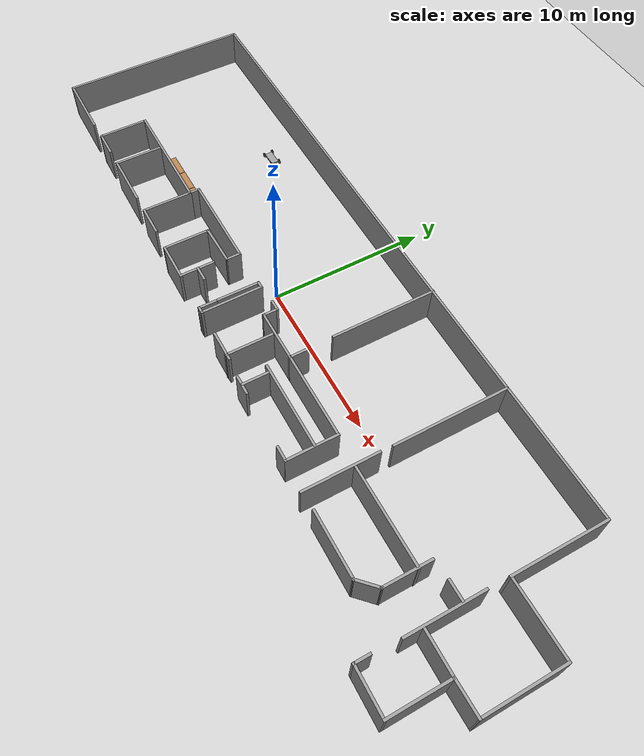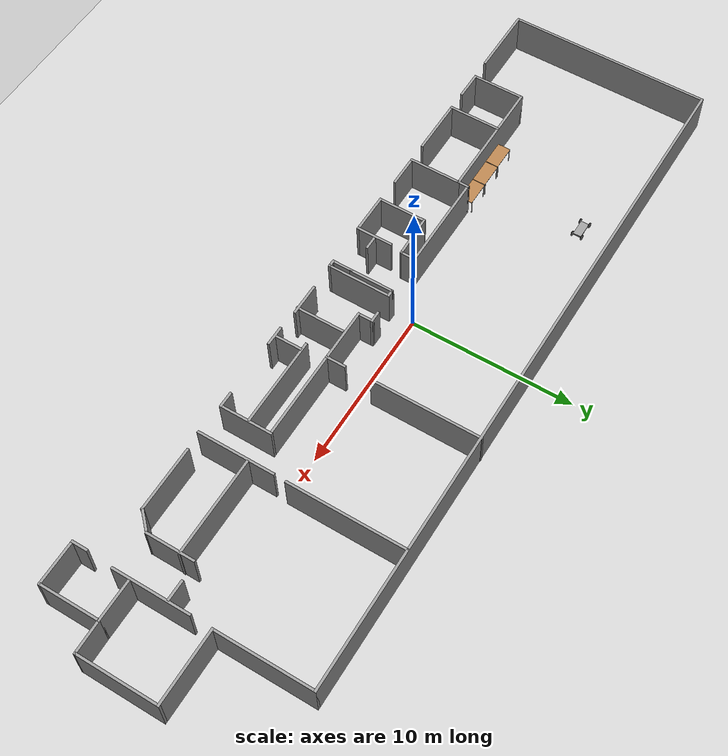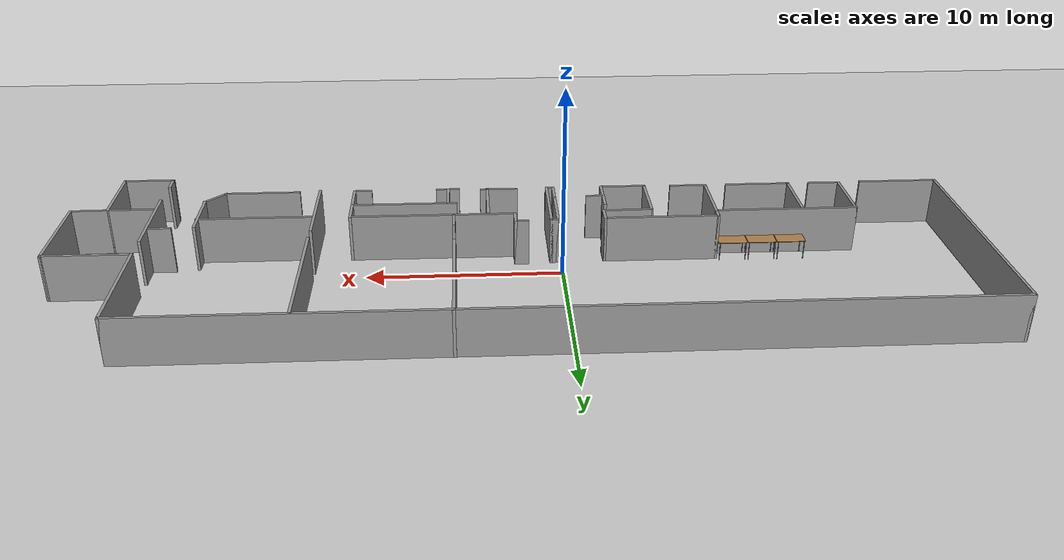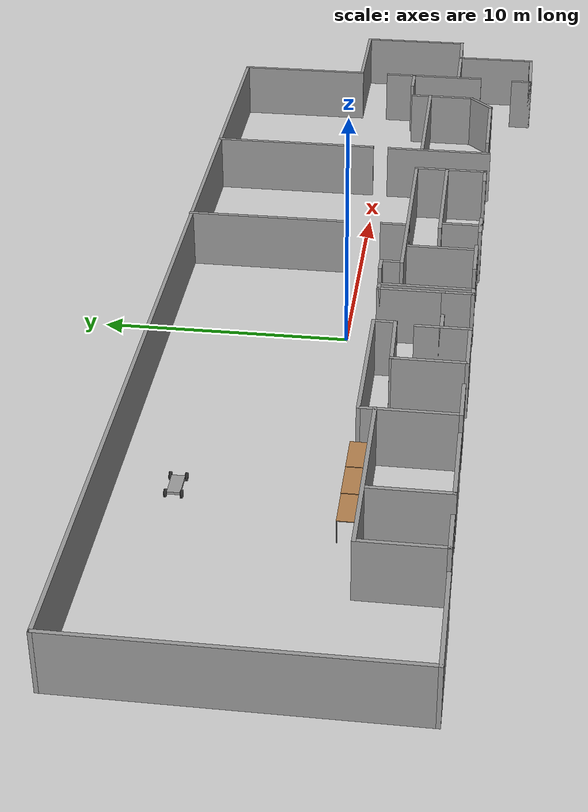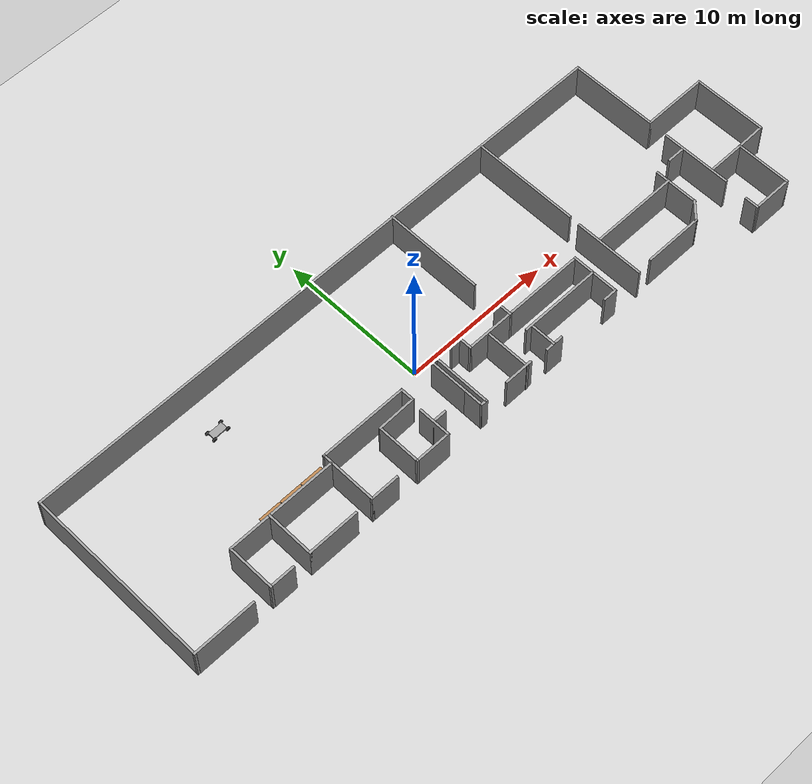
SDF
<sdf version="1.6">
 <world name="default">
  <model name="ground_plane">
   <static>1</static>
   <link name="link">
    <collision name="collision">
     <geometry><plane><normal>0 0 1</normal><size>100 100</size></plane></geometry>
     <surface>
      <contact><collide_bitmask>65535</collide_bitmask></contact>
      <friction><ode><mu>100</mu><mu2>50</mu2></ode></friction>
     </surface>
    </collision>
    <visual name="visual">
     <cast_shadows>0</cast_shadows>
     <geometry><plane><normal>0 0 1</normal><size>100 100</size></plane></geometry>
     <material>
      <script><uri>file://media/materials/scripts/gazebo.material</uri><name>Gazebo/Grey</name></script>
     </material>
    </visual>
   </link>
  </model>
  <model name="574_3rd_floor_Labs">
   <pose>2.28282 0.192982 0 0 -0 0</pose>
   <link name="Wall_0">
    <collision name="Wall_0_Collision">
     <geometry><box><size>4.25 0.15 2.5</size></box></geometry>
     <pose>0 0 1.25 0 -0 0</pose>
    </collision>
    <visual name="Wall_0_Visual">
     <pose>0 0 1.25 0 -0 0</pose>
     <geometry><box><size>4.25 0.15 2.5</size></box></geometry>
     <material>
      <script><uri>file://media/materials/scripts/gazebo.material</uri><name>Gazebo/Grey</name></script>
      <ambient>1 1 1 1</ambient>
     </material>
     <meta><layer>0</layer></meta>
    </visual>
    <pose>-21.0506 -5.20048 0 0 -0 3.14159</pose>
   </link>
   <link name="Wall_1">
    <collision name="Wall_1_Collision">
     <geometry><box><size>12.5 0.15 2.5</size></box></geometry>
     <pose>0 0 1.25 0 -0 0</pose>
    </collision>
    <visual name="Wall_1_Visual">
     <pose>0 0 1.25 0 -0 0</pose>
     <geometry><box><size>12.5 0.15 2.5</size></box></geometry>
     <material>
      <script><uri>file://media/materials/scripts/gazebo.material</uri><name>Gazebo/Grey</name></script>
      <ambient>1 1 1 1</ambient>
     </material>
     <meta><layer>0</layer></meta>
    </visual>
    <pose>-23.1006 0.974519 0 0 -0 1.5708</pose>
   </link>
   <link name="Wall_10">
    <collision name="Wall_10_Collision">
     <geometry><box><size>1 0.15 2.5</size></box></geometry>
     <pose>0 0 1.25 0 -0 0</pose>
    </collision>
    <visual name="Wall_10_Visual">
     <pose>0 0 1.25 0 -0 0</pose>
     <geometry><box><size>1 0.15 2.5</size></box></geometry>
     <material>
      <script><uri>file://media/materials/scripts/gazebo.material</uri><name>Gazebo/Grey</name></script>
      <ambient>1 1 1 1</ambient>
     </material>
     <meta><layer>0</layer></meta>
    </visual>
    <pose>-4.55115 -1.8903 0 0 0 -1.5708</pose>
   </link>
   <link name="Wall_12">
    <collision name="Wall_12_Collision">
     <geometry><box><size>3.25 0.15 2.5</size></box></geometry>
     <pose>0 0 1.25 0 -0 0</pose>
    </collision>
    <visual name="Wall_12_Visual">
     <pose>0 0 1.25 0 -0 0</pose>
     <geometry><box><size>3.25 0.15 2.5</size></box></geometry>
     <material>
      <script><uri>file://media/materials/scripts/gazebo.material</uri><name>Gazebo/Grey</name></script>
      <ambient>1 1 1 1</ambient>
     </material>
     <meta><layer>0</layer></meta>
    </visual>
    <pose>-14.9551 -3.61957 0 0 0 -1.5708</pose>
   </link>
   <link name="Wall_13">
    <collision name="Wall_13_Collision">
     <geometry><box><size>3.5 0.15 2.5</size></box></geometry>
     <pose>0 0 1.25 0 -0 0</pose>
    </collision>
    <visual name="Wall_13_Visual">
     <pose>0 0 1.25 0 -0 0</pose>
     <geometry><box><size>3.5 0.15 2.5</size></box></geometry>
     <material>
      <script><uri>file://media/materials/scripts/gazebo.material</uri><name>Gazebo/Grey</name></script>
      <ambient>1 1 1 1</ambient>
     </material>
     <meta><layer>0</layer></meta>
    </visual>
    <pose>-13.2801 -5.16957 0 0 -0 0</pose>
   </link>
   <link name="Wall_15">
    <collision name="Wall_15_Collision">
     <geometry><box><size>3.25 0.15 2.5</size></box></geometry>
     <pose>0 0 1.25 0 -0 0</pose>
    </collision>
    <visual name="Wall_15_Visual">
     <pose>0 0 1.25 0 -0 0</pose>
     <geometry><box><size>3.25 0.15 2.5</size></box></geometry>
     <material>
      <script><uri>file://media/materials/scripts/gazebo.material</uri><name>Gazebo/Grey</name></script>
      <ambient>1 1 1 1</ambient>
     </material>
     <meta><layer>0</layer></meta>
    </visual>
    <pose>-10.4011 -3.6153 0 0 0 -1.5708</pose>
   </link>
   <link name="Wall_16">
    <collision name="Wall_16_Collision">
     <geometry><box><size>2 0.15 2.5</size></box></geometry>
     <pose>0 0 1.25 0 -0 0</pose>
    </collision>
    <visual name="Wall_16_Visual">
     <pose>0 0 1.25 0 -0 0</pose>
     <geometry><box><size>2 0.15 2.5</size></box></geometry>
     <material>
      <script><uri>file://media/materials/scripts/gazebo.material</uri><name>Gazebo/Grey</name></script>
      <ambient>1 1 1 1</ambient>
     </material>
     <meta><layer>0</layer></meta>
    </visual>
    <pose>-9.47615 -5.1653 0 0 -0 0</pose>
   </link>
   <link name="Wall_18">
    <collision name="Wall_18_Collision">
     <geometry><box><size>2.25 0.15 2.5</size></box></geometry>
     <pose>0 0 1.25 0 -0 0</pose>
    </collision>
    <visual name="Wall_18_Visual">
     <pose>0 0 1.25 0 -0 0</pose>
     <geometry><box><size>2.25 0.15 2.5</size></box></geometry>
     <material>
      <script><uri>file://media/materials/scripts/gazebo.material</uri><name>Gazebo/Grey</name></script>
      <ambient>1 1 1 1</ambient>
     </material>
     <meta><layer>0</layer></meta>
    </visual>
    <pose>-4.71805 -4.17493 0 0 0 -1.5708</pose>
   </link>
   <link name="Wall_19">
    <collision name="Wall_19_Collision">
     <geometry><box><size>2.5 0.15 2.5</size></box></geometry>
     <pose>0 0 1.25 0 -0 0</pose>
    </collision>
    <visual name="Wall_19_Visual">
     <pose>0 0 1.25 0 -0 0</pose>
     <geometry><box><size>2.5 0.15 2.5</size></box></geometry>
     <material>
      <script><uri>file://media/materials/scripts/gazebo.material</uri><name>Gazebo/Grey</name></script>
      <ambient>1 1 1 1</ambient>
     </material>
     <meta><layer>0</layer></meta>
    </visual>
    <pose>-5.89305 -5.22493 0 0 -0 3.14159</pose>
   </link>
   <link name="Wall_2">
    <collision name="Wall_2_Collision">
     <geometry><box><size>42 0.15 2.5</size></box></geometry>
     <pose>0 0 1.25 0 -0 0</pose>
    </collision>
    <visual name="Wall_2_Visual">
     <pose>0 0 1.25 0 -0 0</pose>
     <geometry><box><size>42 0.15 2.5</size></box></geometry>
     <material>
      <script><uri>file://media/materials/scripts/gazebo.material</uri><name>Gazebo/Grey</name></script>
      <ambient>1 1 1 1</ambient>
     </material>
     <meta><layer>0</layer></meta>
    </visual>
    <pose>-2.17563 7.14952 0 0 -0 0</pose>
   </link>
   <link name="Wall_20">
    <collision name="Wall_20_Collision">
     <geometry><box><size>3 0.15 2.5</size></box></geometry>
     <pose>0 0 1.25 0 -0 0</pose>
    </collision>
    <visual name="Wall_20_Visual">
     <pose>0 0 1.25 0 -0 0</pose>
     <geometry><box><size>3 0.15 2.5</size></box></geometry>
     <material>
      <script><uri>file://media/materials/scripts/gazebo.material</uri><name>Gazebo/Grey</name></script>
      <ambient>1 1 1 1</ambient>
     </material>
     <meta><layer>0</layer></meta>
    </visual>
    <pose>-7.06805 -3.79993 0 0 -0 1.5708</pose>
   </link>
   <link name="Wall_21">
    <collision name="Wall_21_Collision">
     <geometry><box><size>2.66761 0.15 2.5</size></box></geometry>
     <pose>0 0 1.25 0 -0 0</pose>
    </collision>
    <visual name="Wall_21_Visual">
     <pose>0 0 1.25 0 -0 0</pose>
     <geometry><box><size>2.66761 0.15 2.5</size></box></geometry>
     <material>
      <script><uri>file://media/materials/scripts/gazebo.material</uri><name>Gazebo/Grey</name></script>
      <ambient>1 1 1 1</ambient>
     </material>
     <meta><layer>0</layer></meta>
    </visual>
    <pose>-5.8096 -2.34512 0 0 -0 0.023688</pose>
   </link>
   <link name="Wall_24">
    <collision name="Wall_24_Collision">
     <geometry><box><size>6.75 0.15 2.5</size></box></geometry>
     <pose>0 0 1.25 0 -0 0</pose>
    </collision>
    <visual name="Wall_24_Visual">
     <pose>0 0 1.25 0 -0 0</pose>
     <geometry><box><size>6.75 0.15 2.5</size></box></geometry>
     <material>
      <script><uri>file://media/materials/scripts/gazebo.material</uri><name>Gazebo/Grey</name></script>
      <ambient>1 1 1 1</ambient>
     </material>
     <meta><layer>0</layer></meta>
    </visual>
    <pose>3.19717 3.88244 0 0 0 -1.5708</pose>
   </link>
   <link name="Wall_26">
    <collision name="Wall_26_Collision">
     <geometry><box><size>7.25 0.15 2.5</size></box></geometry>
     <pose>0 0 1.25 0 -0 0</pose>
    </collision>
    <visual name="Wall_26_Visual">
     <pose>0 0 1.25 0 -0 0</pose>
     <geometry><box><size>7.25 0.15 2.5</size></box></geometry>
     <material>
      <script><uri>file://media/materials/scripts/gazebo.material</uri><name>Gazebo/Grey</name></script>
      <ambient>1 1 1 1</ambient>
     </material>
     <meta><layer>0</layer></meta>
    </visual>
    <pose>10.444 3.56209 0 0 0 -1.5708</pose>
   </link>
   <link name="Wall_28">
    <collision name="Wall_28_Collision">
     <geometry><box><size>1 0.15 2.5</size></box></geometry>
     <pose>0 0 1.25 0 -0 0</pose>
    </collision>
    <visual name="Wall_28_Visual">
     <pose>0 0 1.25 0 -0 0</pose>
     <geometry><box><size>1 0.15 2.5</size></box></geometry>
     <material>
      <script><uri>file://media/materials/scripts/gazebo.material</uri><name>Gazebo/Grey</name></script>
      <ambient>1 1 1 1</ambient>
     </material>
     <meta><layer>0</layer></meta>
    </visual>
    <pose>-4.29305 -4.10994 0 0 -0 0</pose>
   </link>
   <link name="Wall_3">
    <collision name="Wall_3_Collision">
     <geometry><box><size>6 0.15 2.5</size></box></geometry>
     <pose>0 0 1.25 0 -0 0</pose>
    </collision>
    <visual name="Wall_3_Visual">
     <pose>0 0 1.25 0 -0 0</pose>
     <geometry><box><size>6 0.15 2.5</size></box></geometry>
     <material>
      <script><uri>file://media/materials/scripts/gazebo.material</uri><name>Gazebo/Grey</name></script>
      <ambient>1 1 1 1</ambient>
     </material>
     <meta><layer>0</layer></meta>
    </visual>
    <pose>18.7494 4.22452 0 0 0 -1.5708</pose>
   </link>
   <link name="Wall_30">
    <collision name="Wall_30_Collision">
     <geometry><box><size>2.75 0.15 2.5</size></box></geometry>
     <pose>0 0 1.25 0 -0 0</pose>
    </collision>
    <visual name="Wall_30_Visual">
     <pose>0 0 1.25 0 -0 0</pose>
     <geometry><box><size>2.75 0.15 2.5</size></box></geometry>
     <material>
      <script><uri>file://media/materials/scripts/gazebo.material</uri><name>Gazebo/Grey</name></script>
      <ambient>1 1 1 1</ambient>
     </material>
     <meta><layer>0</layer></meta>
    </visual>
    <pose>-2.11482 -2.73958 0 0 -0 1.5708</pose>
   </link>
   <link name="Wall_31">
    <collision name="Wall_31_Collision">
     <geometry><box><size>0.5 0.15 2.5</size></box></geometry>
     <pose>0 0 1.25 0 -0 0</pose>
    </collision>
    <visual name="Wall_31_Visual">
     <pose>0 0 1.25 0 -0 0</pose>
     <geometry><box><size>0.5 0.15 2.5</size></box></geometry>
     <material>
      <script><uri>file://media/materials/scripts/gazebo.material</uri><name>Gazebo/Grey</name></script>
      <ambient>1 1 1 1</ambient>
     </material>
     <meta><layer>0</layer></meta>
    </visual>
    <pose>-1.93982 -1.43958 0 0 -0 0</pose>
   </link>
   <link name="Wall_32">
    <collision name="Wall_32_Collision">
     <geometry><box><size>3.92964 0.15 2.5</size></box></geometry>
     <pose>0 0 1.25 0 -0 0</pose>
    </collision>
    <visual name="Wall_32_Visual">
     <pose>0 0 1.25 0 -0 0</pose>
     <geometry><box><size>3.92964 0.15 2.5</size></box></geometry>
     <material>
      <script><uri>file://media/materials/scripts/gazebo.material</uri><name>Gazebo/Grey</name></script>
      <ambient>1 1 1 1</ambient>
     </material>
     <meta><layer>0</layer></meta>
    </visual>
    <pose>-1.76482 -3.3294 0 0 0 -1.5708</pose>
   </link>
   <link name="Wall_35">
    <collision name="Wall_35_Collision">
     <geometry><box><size>0.5 0.15 2.5</size></box></geometry>
     <pose>0 0 1.25 0 -0 0</pose>
    </collision>
    <visual name="Wall_35_Visual">
     <pose>0 0 1.25 0 -0 0</pose>
     <geometry><box><size>0.5 0.15 2.5</size></box></geometry>
     <material>
      <script><uri>file://media/materials/scripts/gazebo.material</uri><name>Gazebo/Grey</name></script>
      <ambient>1 1 1 1</ambient>
     </material>
     <meta><layer>0</layer></meta>
    </visual>
    <pose>-1.93982 -5.21922 0 0 -0 3.14159</pose>
   </link>
   <link name="Wall_36">
    <collision name="Wall_36_Collision">
     <geometry><box><size>1.32964 0.15 2.5</size></box></geometry>
     <pose>0 0 1.25 0 -0 0</pose>
    </collision>
    <visual name="Wall_36_Visual">
     <pose>0 0 1.25 0 -0 0</pose>
     <geometry><box><size>1.32964 0.15 2.5</size></box></geometry>
     <material>
      <script><uri>file://media/materials/scripts/gazebo.material</uri><name>Gazebo/Grey</name></script>
      <ambient>1 1 1 1</ambient>
     </material>
     <meta><layer>0</layer></meta>
    </visual>
    <pose>-2.11482 -4.6294 0 0 -0 1.5708</pose>
   </link>
   <link name="Wall_38">
    <collision name="Wall_38_Collision">
     <geometry><box><size>4.75 0.15 2.5</size></box></geometry>
     <pose>0 0 1.25 0 -0 0</pose>
    </collision>
    <visual name="Wall_38_Visual">
     <pose>0 0 1.25 0 -0 0</pose>
     <geometry><box><size>4.75 0.15 2.5</size></box></geometry>
     <material>
      <script><uri>file://media/materials/scripts/gazebo.material</uri><name>Gazebo/Grey</name></script>
      <ambient>1 1 1 1</ambient>
     </material>
     <meta><layer>0</layer></meta>
    </visual>
    <pose>10.4088 -3.10313 0 0 0 -1.5708</pose>
   </link>
   <link name="Wall_40">
    <collision name="Wall_40_Collision">
     <geometry><box><size>2 0.15 2.5</size></box></geometry>
     <pose>0 0 1.25 0 -0 0</pose>
    </collision>
    <visual name="Wall_40_Visual">
     <pose>0 0 1.25 0 -0 0</pose>
     <geometry><box><size>2 0.15 2.5</size></box></geometry>
     <material>
      <script><uri>file://media/materials/scripts/gazebo.material</uri><name>Gazebo/Grey</name></script>
      <ambient>1 1 1 1</ambient>
     </material>
     <meta><layer>0</layer></meta>
    </visual>
    <pose>0.819218 -5.19149 0 0 -0 0</pose>
   </link>
   <link name="Wall_42">
    <collision name="Wall_42_Collision">
     <geometry><box><size>3 0.15 2.5</size></box></geometry>
     <pose>0 0 1.25 0 -0 0</pose>
    </collision>
    <visual name="Wall_42_Visual">
     <pose>0 0 1.25 0 -0 0</pose>
     <geometry><box><size>3 0.15 2.5</size></box></geometry>
     <material>
      <script><uri>file://media/materials/scripts/gazebo.material</uri><name>Gazebo/Grey</name></script>
      <ambient>1 1 1 1</ambient>
     </material>
     <meta><layer>0</layer></meta>
    </visual>
    <pose>1.44208 -3.80167 0 0 -0 1.5708</pose>
   </link>
   <link name="Wall_44">
    <collision name="Wall_44_Collision">
     <geometry><box><size>8.5 0.15 2.5</size></box></geometry>
     <pose>0 0 1.25 0 -0 0</pose>
    </collision>
    <visual name="Wall_44_Visual">
     <pose>0 0 1.25 0 -0 0</pose>
     <geometry><box><size>8.5 0.15 2.5</size></box></geometry>
     <material>
      <script><uri>file://media/materials/scripts/gazebo.material</uri><name>Gazebo/Grey</name></script>
      <ambient>1 1 1 1</ambient>
     </material>
     <meta><layer>0</layer></meta>
    </visual>
    <pose>4.24511 -2.2013 0 0 -0 0</pose>
   </link>
   <link name="Wall_46">
    <collision name="Wall_46_Collision">
     <geometry><box><size>1 0.15 2.5</size></box></geometry>
     <pose>0 0 1.25 0 -0 0</pose>
    </collision>
    <visual name="Wall_46_Visual">
     <pose>0 0 1.25 0 -0 0</pose>
     <geometry><box><size>1 0.15 2.5</size></box></geometry>
     <material>
      <script><uri>file://media/materials/scripts/gazebo.material</uri><name>Gazebo/Grey</name></script>
      <ambient>1 1 1 1</ambient>
     </material>
     <meta><layer>0</layer></meta>
    </visual>
    <pose>8.1289 -5.29703 0 0 -0 0</pose>
   </link>
   <link name="Wall_47">
    <collision name="Wall_47_Collision">
     <geometry><box><size>3.25 0.15 2.5</size></box></geometry>
     <pose>0 0 1.25 0 -0 0</pose>
    </collision>
    <visual name="Wall_47_Visual">
     <pose>0 0 1.25 0 -0 0</pose>
     <geometry><box><size>3.25 0.15 2.5</size></box></geometry>
     <material>
      <script><uri>file://media/materials/scripts/gazebo.material</uri><name>Gazebo/Grey</name></script>
      <ambient>1 1 1 1</ambient>
     </material>
     <meta><layer>0</layer></meta>
    </visual>
    <pose>8.5539 -3.74703 0 0 -0 1.5708</pose>
   </link>
   <link name="Wall_5">
    <collision name="Wall_5_Collision">
     <geometry><box><size>1.75 0.15 2.5</size></box></geometry>
     <pose>0 0 1.25 0 -0 0</pose>
    </collision>
    <visual name="Wall_5_Visual">
     <pose>0 0 1.25 0 -0 0</pose>
     <geometry><box><size>1.75 0.15 2.5</size></box></geometry>
     <material>
      <script><uri>file://media/materials/scripts/gazebo.material</uri><name>Gazebo/Grey</name></script>
      <ambient>1 1 1 1</ambient>
     </material>
     <meta><layer>0</layer></meta>
    </visual>
    <pose>-16.9511 -5.1653 0 0 -0 3.14159</pose>
   </link>
   <link name="Wall_50">
    <collision name="Wall_50_Collision">
     <geometry><box><size>4 0.15 2.5</size></box></geometry>
     <pose>0 0 1.25 0 -0 0</pose>
    </collision>
    <visual name="Wall_50_Visual">
     <pose>0 0 1.25 0 -0 0</pose>
     <geometry><box><size>4 0.15 2.5</size></box></geometry>
     <material>
      <script><uri>file://media/materials/scripts/gazebo.material</uri><name>Gazebo/Grey</name></script>
      <ambient>1 1 1 1</ambient>
     </material>
     <meta><layer>0</layer></meta>
    </visual>
    <pose>13.4634 -5.29703 0 0 -0 0</pose>
   </link>
   <link name="Wall_53">
    <collision name="Wall_53_Collision">
     <geometry><box><size>1.5 0.15 2.5</size></box></geometry>
     <pose>0 0 1.25 0 -0 0</pose>
    </collision>
    <visual name="Wall_53_Visual">
     <pose>0 0 1.25 0 -0 0</pose>
     <geometry><box><size>1.5 0.15 2.5</size></box></geometry>
     <material>
      <script><uri>file://media/materials/scripts/gazebo.material</uri><name>Gazebo/Grey</name></script>
      <ambient>1 1 1 1</ambient>
     </material>
     <meta><layer>0</layer></meta>
    </visual>
    <pose>15.8657 -4.81973 0 0 -0 0.785398</pose>
   </link>
   <link name="Wall_54">
    <collision name="Wall_54_Collision">
     <geometry><box><size>3 0.15 2.5</size></box></geometry>
     <pose>0 0 1.25 0 -0 0</pose>
    </collision>
    <visual name="Wall_54_Visual">
     <pose>0 0 1.25 0 -0 0</pose>
     <geometry><box><size>3 0.15 2.5</size></box></geometry>
     <material>
      <script><uri>file://media/materials/scripts/gazebo.material</uri><name>Gazebo/Grey</name></script>
      <ambient>1 1 1 1</ambient>
     </material>
     <meta><layer>0</layer></meta>
    </visual>
    <pose>16.343 -2.91743 0 0 -0 1.5708</pose>
   </link>
   <link name="Wall_56">
    <collision name="Wall_56_Collision">
     <geometry><box><size>1.25 0.15 2.5</size></box></geometry>
     <pose>0 0 1.25 0 -0 0</pose>
    </collision>
    <visual name="Wall_56_Visual">
     <pose>0 0 1.25 0 -0 0</pose>
     <geometry><box><size>1.25 0.15 2.5</size></box></geometry>
     <material>
      <script><uri>file://media/materials/scripts/gazebo.material</uri><name>Gazebo/Grey</name></script>
      <ambient>1 1 1 1</ambient>
     </material>
     <meta><layer>0</layer></meta>
    </visual>
    <pose>18.0688 -1.35701 0 0 -0 0</pose>
   </link>
   <link name="Wall_58">
    <collision name="Wall_58_Collision">
     <geometry><box><size>4.75 0.15 2.5</size></box></geometry>
     <pose>0 0 1.25 0 -0 0</pose>
    </collision>
    <visual name="Wall_58_Visual">
     <pose>0 0 1.25 0 -0 0</pose>
     <geometry><box><size>4.75 0.15 2.5</size></box></geometry>
     <material>
      <script><uri>file://media/materials/scripts/gazebo.material</uri><name>Gazebo/Grey</name></script>
      <ambient>1 1 1 1</ambient>
     </material>
     <meta><layer>0</layer></meta>
    </visual>
    <pose>18.7149 -2.35539 0 0 0 -1.5708</pose>
   </link>
   <link name="Wall_6">
    <collision name="Wall_6_Collision">
     <geometry><box><size>3.25 0.15 2.5</size></box></geometry>
     <pose>0 0 1.25 0 -0 0</pose>
    </collision>
    <visual name="Wall_6_Visual">
     <pose>0 0 1.25 0 -0 0</pose>
     <geometry><box><size>3.25 0.15 2.5</size></box></geometry>
     <material>
      <script><uri>file://media/materials/scripts/gazebo.material</uri><name>Gazebo/Grey</name></script>
      <ambient>1 1 1 1</ambient>
     </material>
     <meta><layer>0</layer></meta>
    </visual>
    <pose>-17.7511 -3.6153 0 0 -0 1.5708</pose>
   </link>
   <link name="Wall_60">
    <collision name="Wall_60_Collision">
     <geometry><box><size>2.5 0.15 2.5</size></box></geometry>
     <pose>0 0 1.25 0 -0 0</pose>
    </collision>
    <visual name="Wall_60_Visual">
     <pose>0 0 1.25 0 -0 0</pose>
     <geometry><box><size>2.5 0.15 2.5</size></box></geometry>
     <material>
      <script><uri>file://media/materials/scripts/gazebo.material</uri><name>Gazebo/Grey</name></script>
      <ambient>1 1 1 1</ambient>
     </material>
     <meta><layer>0</layer></meta>
    </visual>
    <pose>20.0332 -3.58244 0 0 -0 0</pose>
   </link>
   <link name="Wall_61">
    <collision name="Wall_61_Collision">
     <geometry><box><size>3.75 0.15 2.5</size></box></geometry>
     <pose>0 0 1.25 0 -0 0</pose>
    </collision>
    <visual name="Wall_61_Visual">
     <pose>0 0 1.25 0 -0 0</pose>
     <geometry><box><size>3.75 0.15 2.5</size></box></geometry>
     <material>
      <script><uri>file://media/materials/scripts/gazebo.material</uri><name>Gazebo/Grey</name></script>
      <ambient>1 1 1 1</ambient>
     </material>
     <meta><layer>0</layer></meta>
    </visual>
    <pose>21.2082 -5.38244 0 0 0 -1.5708</pose>
   </link>
   <link name="Wall_62">
    <collision name="Wall_62_Collision">
     <geometry><box><size>2.75 0.15 2.5</size></box></geometry>
     <pose>0 0 1.25 0 -0 0</pose>
    </collision>
    <visual name="Wall_62_Visual">
     <pose>0 0 1.25 0 -0 0</pose>
     <geometry><box><size>2.75 0.15 2.5</size></box></geometry>
     <material>
      <script><uri>file://media/materials/scripts/gazebo.material</uri><name>Gazebo/Grey</name></script>
      <ambient>1 1 1 1</ambient>
     </material>
     <meta><layer>0</layer></meta>
    </visual>
    <pose>19.9082 -7.18244 0 0 -0 3.14159</pose>
   </link>
   <link name="Wall_63">
    <collision name="Wall_63_Collision">
     <geometry><box><size>1 0.15 2.5</size></box></geometry>
     <pose>0 0 1.25 0 -0 0</pose>
    </collision>
    <visual name="Wall_63_Visual">
     <pose>0 0 1.25 0 -0 0</pose>
     <geometry><box><size>1 0.15 2.5</size></box></geometry>
     <material>
      <script><uri>file://media/materials/scripts/gazebo.material</uri><name>Gazebo/Grey</name></script>
      <ambient>1 1 1 1</ambient>
     </material>
     <meta><layer>0</layer></meta>
    </visual>
    <pose>18.6082 -6.75744 0 0 -0 1.5708</pose>
   </link>
   <link name="Wall_65">
    <collision name="Wall_65_Collision">
     <geometry><box><size>4.5 0.15 2.5</size></box></geometry>
     <pose>0 0 1.25 0 -0 0</pose>
    </collision>
    <visual name="Wall_65_Visual">
     <pose>0 0 1.25 0 -0 0</pose>
     <geometry><box><size>4.5 0.15 2.5</size></box></geometry>
     <material>
      <script><uri>file://media/materials/scripts/gazebo.material</uri><name>Gazebo/Grey</name></script>
      <ambient>1 1 1 1</ambient>
     </material>
     <meta><layer>0</layer></meta>
    </visual>
    <pose>20.9244 1.29952 0 0 -0 0</pose>
   </link>
   <link name="Wall_66">
    <collision name="Wall_66_Collision">
     <geometry><box><size>5 0.15 2.5</size></box></geometry>
     <pose>0 0 1.25 0 -0 0</pose>
    </collision>
    <visual name="Wall_66_Visual">
     <pose>0 0 1.25 0 -0 0</pose>
     <geometry><box><size>5 0.15 2.5</size></box></geometry>
     <material>
      <script><uri>file://media/materials/scripts/gazebo.material</uri><name>Gazebo/Grey</name></script>
      <ambient>1 1 1 1</ambient>
     </material>
     <meta><layer>0</layer></meta>
    </visual>
    <pose>23.0994 -1.12548 0 0 0 -1.5708</pose>
   </link>
   <link name="Wall_67">
    <collision name="Wall_67_Collision">
     <geometry><box><size>2.04146 0.15 2.5</size></box></geometry>
     <pose>0 0 1.25 0 -0 0</pose>
    </collision>
    <visual name="Wall_67_Visual">
     <pose>0 0 1.25 0 -0 0</pose>
     <geometry><box><size>2.04146 0.15 2.5</size></box></geometry>
     <material>
      <script><uri>file://media/materials/scripts/gazebo.material</uri><name>Gazebo/Grey</name></script>
      <ambient>1 1 1 1</ambient>
     </material>
     <meta><layer>0</layer></meta>
    </visual>
    <pose>22.1538 -3.56646 0 0 0 -3.12469</pose>
   </link>
   <link name="Wall_69">
    <collision name="Wall_69_Collision">
     <geometry><box><size>1 0.15 2.5</size></box></geometry>
     <pose>0 0 1.25 0 -0 0</pose>
    </collision>
    <visual name="Wall_69_Visual">
     <pose>0 0 1.25 0 -0 0</pose>
     <geometry><box><size>1 0.15 2.5</size></box></geometry>
     <material>
      <script><uri>file://media/materials/scripts/gazebo.material</uri><name>Gazebo/Grey</name></script>
      <ambient>1 1 1 1</ambient>
     </material>
     <meta><layer>0</layer></meta>
    </visual>
    <pose>0.070112 -1.7763 0 0 -0 1.5708</pose>
   </link>
   <link name="Wall_7">
    <collision name="Wall_7_Collision">
     <geometry><box><size>7.5 0.15 2.5</size></box></geometry>
     <pose>0 0 1.25 0 -0 0</pose>
    </collision>
    <visual name="Wall_7_Visual">
     <pose>0 0 1.25 0 -0 0</pose>
     <geometry><box><size>7.5 0.15 2.5</size></box></geometry>
     <material>
      <script><uri>file://media/materials/scripts/gazebo.material</uri><name>Gazebo/Grey</name></script>
      <ambient>1 1 1 1</ambient>
     </material>
     <meta><layer>0</layer></meta>
    </visual>
    <pose>-14.0761 -2.0653 0 0 -0 0</pose>
   </link>
   <link name="Wall_70">
    <collision name="Wall_70_Collision">
     <geometry><box><size>0.75 0.15 2.5</size></box></geometry>
     <pose>0 0 1.25 0 -0 0</pose>
    </collision>
    <visual name="Wall_70_Visual">
     <pose>0 0 1.25 0 -0 0</pose>
     <geometry><box><size>0.75 0.15 2.5</size></box></geometry>
     <material>
      <script><uri>file://media/materials/scripts/gazebo.material</uri><name>Gazebo/Grey</name></script>
      <ambient>1 1 1 1</ambient>
     </material>
     <meta><layer>0</layer></meta>
    </visual>
    <pose>-0.229888 -1.3513 0 0 -0 3.14159</pose>
   </link>
   <link name="Wall_72">
    <collision name="Wall_72_Collision">
     <geometry><box><size>1.25 0.15 2.5</size></box></geometry>
     <pose>0 0 1.25 0 -0 0</pose>
    </collision>
    <visual name="Wall_72_Visual">
     <pose>0 0 1.25 0 -0 0</pose>
     <geometry><box><size>1.25 0.15 2.5</size></box></geometry>
     <material>
      <script><uri>file://media/materials/scripts/gazebo.material</uri><name>Gazebo/Grey</name></script>
      <ambient>1 1 1 1</ambient>
     </material>
     <meta><layer>0</layer></meta>
    </visual>
    <pose>3.56558 -5.29474 0 0 -0 0</pose>
   </link>
   <link name="Wall_74">
    <collision name="Wall_74_Collision">
     <geometry><box><size>5.5 0.15 2.5</size></box></geometry>
     <pose>0 0 1.25 0 -0 0</pose>
    </collision>
    <visual name="Wall_74_Visual">
     <pose>0 0 1.25 0 -0 0</pose>
     <geometry><box><size>5.5 0.15 2.5</size></box></geometry>
     <material>
      <script><uri>file://media/materials/scripts/gazebo.material</uri><name>Gazebo/Grey</name></script>
      <ambient>1 1 1 1</ambient>
     </material>
     <meta><layer>0</layer></meta>
    </visual>
    <pose>5.81294 -3.58168 0 0 -0 0</pose>
   </link>
   <link name="Wall_76">
    <collision name="Wall_76_Collision">
     <geometry><box><size>1.75 0.15 2.5</size></box></geometry>
     <pose>0 0 1.25 0 -0 0</pose>
    </collision>
    <visual name="Wall_76_Visual">
     <pose>0 0 1.25 0 -0 0</pose>
     <geometry><box><size>1.75 0.15 2.5</size></box></geometry>
     <material>
      <script><uri>file://media/materials/scripts/gazebo.material</uri><name>Gazebo/Grey</name></script>
      <ambient>1 1 1 1</ambient>
     </material>
     <meta><layer>0</layer></meta>
    </visual>
    <pose>3.53562 -4.46415 0 0 -0 1.5708</pose>
   </link>
   <link name="Wall_78">
    <collision name="Wall_78_Collision">
     <geometry><box><size>1.25 0.15 2.5</size></box></geometry>
     <pose>0 0 1.25 0 -0 0</pose>
    </collision>
    <visual name="Wall_78_Visual">
     <pose>0 0 1.25 0 -0 0</pose>
     <geometry><box><size>1.25 0.15 2.5</size></box></geometry>
     <material>
      <script><uri>file://media/materials/scripts/gazebo.material</uri><name>Gazebo/Grey</name></script>
      <ambient>1 1 1 1</ambient>
     </material>
     <meta><layer>0</layer></meta>
    </visual>
    <pose>3.22971 -1.65512 0 0 -0 1.5708</pose>
   </link>
   <link name="Wall_8">
    <collision name="Wall_8_Collision">
     <geometry><box><size>0.75 0.15 2.5</size></box></geometry>
     <pose>0 0 1.25 0 -0 0</pose>
    </collision>
    <visual name="Wall_8_Visual">
     <pose>0 0 1.25 0 -0 0</pose>
     <geometry><box><size>0.75 0.15 2.5</size></box></geometry>
     <material>
      <script><uri>file://media/materials/scripts/gazebo.material</uri><name>Gazebo/Grey</name></script>
      <ambient>1 1 1 1</ambient>
     </material>
     <meta><layer>0</layer></meta>
    </visual>
    <pose>-10.4011 -1.7653 0 0 -0 1.5708</pose>
   </link>
   <link name="Wall_80">
    <collision name="Wall_80_Collision">
     <geometry><box><size>6 0.15 2.5</size></box></geometry>
     <pose>0 0 1.25 0 -0 0</pose>
    </collision>
    <visual name="Wall_80_Visual">
     <pose>0 0 1.25 0 -0 0</pose>
     <geometry><box><size>6 0.15 2.5</size></box></geometry>
     <material>
      <script><uri>file://media/materials/scripts/gazebo.material</uri><name>Gazebo/Grey</name></script>
      <ambient>1 1 1 1</ambient>
     </material>
     <meta><layer>0</layer></meta>
    </visual>
    <pose>13.453 -2.3154 0 0 -0 3.14159</pose>
   </link>
   <link name="Wall_9">
    <collision name="Wall_9_Collision">
     <geometry><box><size>6 0.15 2.5</size></box></geometry>
     <pose>0 0 1.25 0 -0 0</pose>
    </collision>
    <visual name="Wall_9_Visual">
     <pose>0 0 1.25 0 -0 0</pose>
     <geometry><box><size>6 0.15 2.5</size></box></geometry>
     <material>
      <script><uri>file://media/materials/scripts/gazebo.material</uri><name>Gazebo/Grey</name></script>
      <ambient>1 1 1 1</ambient>
     </material>
     <meta><layer>0</layer></meta>
    </visual>
    <pose>-7.47615 -1.4653 0 0 -0 0</pose>
   </link>
   <static>1</static>
  </model>
  <model name="table">
   <static>1</static>
   <link name="link">
    <collision name="surface">
     <pose>0 0 1 0 -0 0</pose>
     <geometry><box><size>1.5 0.8 0.03</size></box></geometry>
     <surface><friction><ode><mu>0.6</mu><mu2>0.6</mu2></ode></friction></surface>
    </collision>
    <visual name="visual1">
     <pose>0 0 1 0 -0 0</pose>
     <geometry><box><size>1.5 0.8 0.03</size></box></geometry>
     <material>
      <script><uri>file://media/materials/scripts/gazebo.material</uri><name>Gazebo/Wood</name></script>
     </material>
    </visual>
    <collision name="front_left_leg">
     <pose>0.68 0.38 0.5 0 -0 0</pose>
     <geometry><cylinder><radius>0.02</radius><length>1</length></cylinder></geometry>
    </collision>
    <visual name="front_left_leg">
     <pose>0.68 0.38 0.5 0 -0 0</pose>
     <geometry><cylinder><radius>0.02</radius><length>1</length></cylinder></geometry>
     <material>
      <script><uri>file://media/materials/scripts/gazebo.material</uri><name>Gazebo/Grey</name></script>
     </material>
    </visual>
    <collision name="front_right_leg">
     <pose>0.68 -0.38 0.5 0 -0 0</pose>
     <geometry><cylinder><radius>0.02</radius><length>1</length></cylinder></geometry>
    </collision>
    <visual name="front_right_leg">
     <pose>0.68 -0.38 0.5 0 -0 0</pose>
     <geometry><cylinder><radius>0.02</radius><length>1</length></cylinder></geometry>
     <material>
      <script><uri>file://media/materials/scripts/gazebo.material</uri><name>Gazebo/Grey</name></script>
     </material>
    </visual>
    <collision name="back_right_leg">
     <pose>-0.68 -0.38 0.5 0 -0 0</pose>
     <geometry><cylinder><radius>0.02</radius><length>1</length></cylinder></geometry>
    </collision>
    <visual name="back_right_leg">
     <pose>-0.68 -0.38 0.5 0 -0 0</pose>
     <geometry><cylinder><radius>0.02</radius><length>1</length></cylinder></geometry>
     <material>
      <script><uri>file://media/materials/scripts/gazebo.material</uri><name>Gazebo/Grey</name></script>
     </material>
    </visual>
    <collision name="back_left_leg">
     <pose>-0.68 0.38 0.5 0 -0 0</pose>
     <geometry><cylinder><radius>0.02</radius><length>1</length></cylinder></geometry>
    </collision>
    <visual name="back_left_leg">
     <pose>-0.68 0.38 0.5 0 -0 0</pose>
     <geometry><cylinder><radius>0.02</radius><length>1</length></cylinder></geometry>
     <material>
      <script><uri>file://media/materials/scripts/gazebo.material</uri><name>Gazebo/Grey</name></script>
     </material>
    </visual>
   </link>
   <pose>-8.95807 -1.39202 0 0 -0 0</pose>
  </model>
  <model name="table_0">
   <static>1</static>
   <link name="link">
    <collision name="surface">
     <pose>0 0 1 0 -0 0</pose>
     <geometry><box><size>1.5 0.8 0.03</size></box></geometry>
     <surface><friction><ode><mu>0.6</mu><mu2>0.6</mu2></ode></friction></surface>
    </collision>
    <visual name="visual1">
     <pose>0 0 1 0 -0 0</pose>
     <geometry><box><size>1.5 0.8 0.03</size></box></geometry>
     <material>
      <script><uri>file://media/materials/scripts/gazebo.material</uri><name>Gazebo/Wood</name></script>
     </material>
    </visual>
    <collision name="front_left_leg">
     <pose>0.68 0.38 0.5 0 -0 0</pose>
     <geometry><cylinder><radius>0.02</radius><length>1</length></cylinder></geometry>
    </collision>
    <visual name="front_left_leg">
     <pose>0.68 0.38 0.5 0 -0 0</pose>
     <geometry><cylinder><radius>0.02</radius><length>1</length></cylinder></geometry>
     <material>
      <script><uri>file://media/materials/scripts/gazebo.material</uri><name>Gazebo/Grey</name></script>
     </material>
    </visual>
    <collision name="front_right_leg">
     <pose>0.68 -0.38 0.5 0 -0 0</pose>
     <geometry><cylinder><radius>0.02</radius><length>1</length></cylinder></geometry>
    </collision>
    <visual name="front_right_leg">
     <pose>0.68 -0.38 0.5 0 -0 0</pose>
     <geometry><cylinder><radius>0.02</radius><length>1</length></cylinder></geometry>
     <material>
      <script><uri>file://media/materials/scripts/gazebo.material</uri><name>Gazebo/Grey</name></script>
     </material>
    </visual>
    <collision name="back_right_leg">
     <pose>-0.68 -0.38 0.5 0 -0 0</pose>
     <geometry><cylinder><radius>0.02</radius><length>1</length></cylinder></geometry>
    </collision>
    <visual name="back_right_leg">
     <pose>-0.68 -0.38 0.5 0 -0 0</pose>
     <geometry><cylinder><radius>0.02</radius><length>1</length></cylinder></geometry>
     <material>
      <script><uri>file://media/materials/scripts/gazebo.material</uri><name>Gazebo/Grey</name></script>
     </material>
    </visual>
    <collision name="back_left_leg">
     <pose>-0.68 0.38 0.5 0 -0 0</pose>
     <geometry><cylinder><radius>0.02</radius><length>1</length></cylinder></geometry>
    </collision>
    <visual name="back_left_leg">
     <pose>-0.68 0.38 0.5 0 -0 0</pose>
     <geometry><cylinder><radius>0.02</radius><length>1</length></cylinder></geometry>
     <material>
      <script><uri>file://media/materials/scripts/gazebo.material</uri><name>Gazebo/Grey</name></script>
     </material>
    </visual>
   </link>
   <pose>-10.4861 -1.39241 0 0 -0 0</pose>
  </model>
  <model name="table_1">
   <static>1</static>
   <link name="link">
    <collision name="surface">
     <pose>0 0 1 0 -0 0</pose>
     <geometry><box><size>1.5 0.8 0.03</size></box></geometry>
     <surface><friction><ode><mu>0.6</mu><mu2>0.6</mu2></ode></friction></surface>
    </collision>
    <visual name="visual1">
     <pose>0 0 1 0 -0 0</pose>
     <geometry><box><size>1.5 0.8 0.03</size></box></geometry>
     <material>
      <script><uri>file://media/materials/scripts/gazebo.material</uri><name>Gazebo/Wood</name></script>
     </material>
    </visual>
    <collision name="front_left_leg">
     <pose>0.68 0.38 0.5 0 -0 0</pose>
     <geometry><cylinder><radius>0.02</radius><length>1</length></cylinder></geometry>
    </collision>
    <visual name="front_left_leg">
     <pose>0.68 0.38 0.5 0 -0 0</pose>
     <geometry><cylinder><radius>0.02</radius><length>1</length></cylinder></geometry>
     <material>
      <script><uri>file://media/materials/scripts/gazebo.material</uri><name>Gazebo/Grey</name></script>
     </material>
    </visual>
    <collision name="front_right_leg">
     <pose>0.68 -0.38 0.5 0 -0 0</pose>
     <geometry><cylinder><radius>0.02</radius><length>1</length></cylinder></geometry>
    </collision>
    <visual name="front_right_leg">
     <pose>0.68 -0.38 0.5 0 -0 0</pose>
     <geometry><cylinder><radius>0.02</radius><length>1</length></cylinder></geometry>
     <material>
      <script><uri>file://media/materials/scripts/gazebo.material</uri><name>Gazebo/Grey</name></script>
     </material>
    </visual>
    <collision name="back_right_leg">
     <pose>-0.68 -0.38 0.5 0 -0 0</pose>
     <geometry><cylinder><radius>0.02</radius><length>1</length></cylinder></geometry>
    </collision>
    <visual name="back_right_leg">
     <pose>-0.68 -0.38 0.5 0 -0 0</pose>
     <geometry><cylinder><radius>0.02</radius><length>1</length></cylinder></geometry>
     <material>
      <script><uri>file://media/materials/scripts/gazebo.material</uri><name>Gazebo/Grey</name></script>
     </material>
    </visual>
    <collision name="back_left_leg">
     <pose>-0.68 0.38 0.5 0 -0 0</pose>
     <geometry><cylinder><radius>0.02</radius><length>1</length></cylinder></geometry>
    </collision>
    <visual name="back_left_leg">
     <pose>-0.68 0.38 0.5 0 -0 0</pose>
     <geometry><cylinder><radius>0.02</radius><length>1</length></cylinder></geometry>
     <material>
      <script><uri>file://media/materials/scripts/gazebo.material</uri><name>Gazebo/Grey</name></script>
     </material>
    </visual>
   </link>
   <pose>-12.0152 -1.40034 0 0 -0 0</pose>
  </model>
  <model name="cart_front_steer">
   <link name="chassis">
    <pose>0 0 0.15 0 -0 0</pose>
    <inertial>
     <pose>0.1 0 0 0 -0 0</pose>
     <mass>10</mass>
     <inertia>
      <ixx>0.216667</ixx>
      <iyy>0.841667</iyy>
      <izz>1.04167</izz>
      <ixy>0</ixy>
      <ixz>0</ixz>
      <iyz>0</iyz>
     </inertia>
    </inertial>
    <collision name="collision"><geometry><box><size>1 0.5 0.1</size></box></geometry></collision>
    <visual name="visual">
     <geometry><box><size>1 0.5 0.1</size></box></geometry>
     <material>
      <script><uri>file://media/materials/scripts/gazebo.material</uri><name>Gazebo/Grey</name></script>
     </material>
    </visual>
   </link>
   <link name="wheel_front_left">
    <pose>0.5 0.298 0.15 -1.5708 -0.087266 0</pose>
    <inertial>
     <mass>0.5</mass>
     <inertia>
      <ixx>0.00307917</ixx>
      <iyy>0.00307917</iyy>
      <izz>0.005625</izz>
      <ixy>0</ixy>
      <ixz>0</ixz>
      <iyz>0</iyz>
     </inertia>
    </inertial>
    <collision name="collision">
     <geometry><cylinder><radius>0.15</radius><length>0.08</length></cylinder></geometry>
    </collision>
    <visual name="visual">
     <geometry><cylinder><radius>0.15</radius><length>0.08</length></cylinder></geometry>
     <material>
      <script><uri>file://media/materials/scripts/gazebo.material</uri><name>Gazebo/Black</name></script>
     </material>
    </visual>
   </link>
   <joint name="wheel_front_left_steer_spin" type="universal">
    <parent>chassis</parent>
    <child>wheel_front_left</child>
    <axis>
     <xyz>0 -1 0</xyz>
     <limit><lower>-0.610865</lower><upper>0.610865</upper></limit>
     <use_parent_model_frame>0</use_parent_model_frame>
     <dynamics><spring_reference>0</spring_reference><spring_stiffness>0</spring_stiffness></dynamics>
    </axis>
    <axis2>
     <xyz>0 0 1</xyz>
     <use_parent_model_frame>0</use_parent_model_frame>
     <dynamics><spring_reference>0</spring_reference><spring_stiffness>0</spring_stiffness></dynamics>
    </axis2>
   </joint>
   <link name="wheel_front_right">
    <pose>0.5 -0.298 0.15 -1.5708 -0.087266 0</pose>
    <inertial>
     <mass>0.5</mass>
     <inertia>
      <ixx>0.00307917</ixx>
      <iyy>0.00307917</iyy>
      <izz>0.005625</izz>
      <ixy>0</ixy>
      <ixz>0</ixz>
      <iyz>0</iyz>
     </inertia>
    </inertial>
    <collision name="collision">
     <geometry><cylinder><radius>0.15</radius><length>0.08</length></cylinder></geometry>
    </collision>
    <visual name="visual">
     <geometry><cylinder><radius>0.15</radius><length>0.08</length></cylinder></geometry>
     <material>
      <script><uri>file://media/materials/scripts/gazebo.material</uri><name>Gazebo/Black</name></script>
     </material>
    </visual>
   </link>
   <joint name="wheel_front_right_steer_spin" type="universal">
    <parent>chassis</parent>
    <child>wheel_front_right</child>
    <axis>
     <xyz>0 -1 0</xyz>
     <limit><lower>-0.610865</lower><upper>0.610865</upper></limit>
     <use_parent_model_frame>0</use_parent_model_frame>
     <dynamics><spring_reference>0</spring_reference><spring_stiffness>0</spring_stiffness></dynamics>
    </axis>
    <axis2>
     <xyz>0 0 1</xyz>
     <use_parent_model_frame>0</use_parent_model_frame>
     <dynamics><spring_reference>0</spring_reference><spring_stiffness>0</spring_stiffness></dynamics>
    </axis2>
   </joint>
   <link name="wheel_rear_left">
    <pose>-0.5 0.298 0.15 -1.5708 0 0</pose>
    <inertial>
     <mass>0.5</mass>
     <inertia>
      <ixx>0.00307917</ixx>
      <iyy>0.00307917</iyy>
      <izz>0.005625</izz>
      <ixy>0</ixy>
      <ixz>0</ixz>
      <iyz>0</iyz>
     </inertia>
    </inertial>
    <collision name="collision">
     <geometry><cylinder><radius>0.15</radius><length>0.08</length></cylinder></geometry>
    </collision>
    <visual name="visual">
     <geometry><cylinder><radius>0.15</radius><length>0.08</length></cylinder></geometry>
     <material>
      <script><uri>file://media/materials/scripts/gazebo.material</uri><name>Gazebo/Black</name></script>
     </material>
    </visual>
   </link>
   <joint name="wheel_rear_left_spin" type="revolute">
    <parent>chassis</parent>
    <child>wheel_rear_left</child>
    <axis>
     <xyz>0 0 1</xyz>
     <use_parent_model_frame>0</use_parent_model_frame>
     <limit><lower>-1e+16</lower><upper>1e+16</upper></limit>
     <dynamics><spring_reference>0</spring_reference><spring_stiffness>0</spring_stiffness></dynamics>
    </axis>
   </joint>
   <link name="wheel_rear_right">
    <pose>-0.5 -0.298 0.15 -1.5708 0 0</pose>
    <inertial>
     <mass>0.5</mass>
     <inertia>
      <ixx>0.00307917</ixx>
      <iyy>0.00307917</iyy>
      <izz>0.005625</izz>
      <ixy>0</ixy>
      <ixz>0</ixz>
      <iyz>0</iyz>
     </inertia>
    </inertial>
    <collision name="collision">
     <geometry><cylinder><radius>0.15</radius><length>0.08</length></cylinder></geometry>
    </collision>
    <visual name="visual">
     <geometry><cylinder><radius>0.15</radius><length>0.08</length></cylinder></geometry>
     <material>
      <script><uri>file://media/materials/scripts/gazebo.material</uri><name>Gazebo/Black</name></script>
     </material>
    </visual>
   </link>
   <joint name="wheel_rear_right_spin" type="revolute">
    <parent>chassis</parent>
    <child>wheel_rear_right</child>
    <axis>
     <xyz>0 0 1</xyz>
     <use_parent_model_frame>0</use_parent_model_frame>
     <limit><lower>-1e+16</lower><upper>1e+16</upper></limit>
     <dynamics><spring_reference>0</spring_reference><spring_stiffness>0</spring_stiffness></dynamics>
    </axis>
   </joint>
   <pose>-10.3942 5.03143 0.010002 -1e-06 -1e-06 0.009205</pose>
  </model>
 </world>
</sdf>
